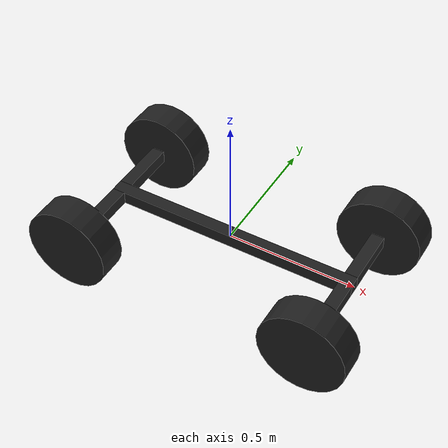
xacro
<?xml version="1.0" ?>
<robot name="rave_robot" xmlns:xacro="http://ros.org/wiki/xacro">
  <xacro:property name="robot_namespace" value="/rave"/>

  <xacro:property name="M_PI" value="3.1415926535897931" />
  <xacro:include filename="$(find rave_description)/urdf/common_properties.urdf"/>
  <xacro:include filename="$(find rave_description)/urdf/inertials.xacro"/>
  <xacro:include filename="$(find rave_description)/urdf/wheel.urdf.xacro"/>

  <!-- main axis dimensions -->
  <xacro:property name="bar_x" value="1.0" />
  <xacro:property name="bar_y" value="0.05" />
  <xacro:property name="bar_z" value="0.05" />
  <xacro:property name="bar_mass" value="1" />

  <!-- Wheel Properties -->
  <xacro:property name="wheel_length" value="0.1143" />
  <xacro:property name="wheel_radius" value="0.1651" />

  <gazebo>
      <!--ROS Control Plugin -->
      <plugin name="gazebo_ros_controller_manager" filename="libgazebo_ros_control.so">
          <legacyModeNS>true</legacyModeNS>
          <robotSimType>steer_bot_hardware_gazebo/SteerBotHardwareGazebo</robotSimType>
      </plugin>
  </gazebo>

  <!-- Base link -->
    <link name="base_link">
        <visual>
            <origin xyz="0 0 0" rpy="0 0 0"/>
            <geometry>
                <box size="${bar_x} ${bar_y} ${bar_z}" />
            </geometry>
            <material name="light_black" />
        </visual>
        <collision>
            <origin xyz="0 0 0" rpy="0 0 0"/>
            <geometry>
                <box size="${bar_x} ${bar_y} ${bar_z}" />
            </geometry>
        </collision>
        <xacro:solid_cuboid_inertial
        rpy="0 0 0" xyz="0 0 0"
        mass="${bar_x}"
        x="${bar_x}" y="${bar_y}" z="${bar_z}" />

        <visual>
            <origin xyz="${bar_x/2 - bar_y/2} 0 0" rpy="0 0 ${M_PI/2}"/>
            <geometry>
                <box size="${bar_x/2} ${bar_y} ${bar_z}" />
            </geometry>
            <material name="light_black" />
        </visual>
        <collision>
            <origin xyz="${bar_x/2 - bar_y/2} 0 0" rpy="0 0 ${M_PI/2}"/>
            <geometry>
                <box size="${bar_x/2} ${bar_y} ${bar_z}" />
            </geometry>
        </collision>
        <xacro:solid_cuboid_inertial
        rpy="0 0 0" xyz="${bar_x/2 - bar_y/2} 0 ${M_PI/2}"
        mass="${bar_x}"
        x="${bar_x/2}" y="${bar_y}" z="${bar_z}" />

        <visual>
            <origin xyz="-${bar_x/2 - bar_y/2} 0 0" rpy="0 0 ${M_PI/2}"/>
            <geometry>
                <box size="${bar_x/2} ${bar_y} ${bar_z}" />
            </geometry>
            <material name="light_black" />
        </visual>
        <collision>
            <origin xyz="-${bar_x/2 - bar_y/2} 0 0" rpy="0 0 ${M_PI/2}"/>
            <geometry>
                <box size="${bar_x/2} ${bar_y} ${bar_z}" />
            </geometry>
        </collision>
        <xacro:solid_cuboid_inertial
        rpy="0 0 0" xyz="-${bar_x/2 - bar_y/2} 0 ${M_PI/2}"
        mass="${bar_x}"
        x="${bar_x/2}" y="${bar_y}" z="${bar_z}" />
    </link>

    <!-- Base footprint is on the ground under the robot -->
    <link name="base_footprint"/>

    <joint name="base_footprint_joint" type="fixed">
      <parent link="base_link" />
      <child link="base_footprint" />
      <origin xyz="0 0 -${wheel_radius}" rpy="0 0 0" />
    </joint>

  <!-- Rave wheel macros -->
  <xacro:front_wheel_lr wheel_prefix="front_right">
    <origin xyz="${bar_x/2 - bar_y/2 } -${bar_x/4 + wheel_length/2} 0.0" rpy="0 0 0" />
  </xacro:front_wheel_lr>

  <xacro:front_wheel_lr wheel_prefix="front_left">
    <origin xyz="${bar_x/2 - bar_y/2 } ${bar_x/4 + wheel_length/2} 0.0" rpy="${M_PI} 0 0" />
  </xacro:front_wheel_lr>

  <xacro:rear_wheel_lr wheel_prefix="rear_right">
    <origin xyz="-${bar_x/2 - bar_y/2 } -${bar_x/4 + wheel_length/2} 0.0" rpy="0 0 0" />
  </xacro:rear_wheel_lr>

  <xacro:rear_wheel_lr wheel_prefix="rear_left">
    <origin xyz="-${bar_x/2 - bar_y/2 } ${bar_x/4 + wheel_length/2} 0.0" rpy="${M_PI} 0 0" />
  </xacro:rear_wheel_lr>

</robot>

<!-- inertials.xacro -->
<robot name="inertials" xmlns:xacro="http://wiki.ros.org/xacro">

    <!-- Math constants -->
    <xacro:property name="math_pi"        value="3.141592653589793" />
    <xacro:property name="math_pi_over_2" value="1.5707963267948966" />
    <xacro:property name="math_pi_over_4" value="0.785398163397448" />

    <!-- Inertial for solid cuboid with dimensions x y z  -->
    <xacro:macro name="solid_cuboid_inertial" params="rpy xyz mass x y z">
        <inertial>
            <origin rpy="${rpy}" xyz="${xyz}"/>
            <mass value="${mass}" />
            <inertia
                ixx="${mass * (y * y + z * z) / 12.0}" ixy="0.0" ixz="0.0"
                iyy="${mass * (x * x + z * z) / 12.0}" iyz="0.0"
                izz="${mass * (x * x + y * y) / 12.0}" />
        </inertial>
    </xacro:macro>

    <!-- Inertial for solid cylinder with radius and length aligned to z-axis  -->
    <xacro:macro name="solid_cylinder_inertial" params="rpy xyz mass radius length">
        <inertial>
            <origin rpy="${rpy}" xyz="${xyz}"/>
            <mass value="${mass}" />
            <inertia
                ixx="${mass * (3.0 * radius * radius + length * length) / 12.0}" ixy="0.0" ixz="0.0"
                iyy="${mass * (3.0 * radius * radius + length * length) / 12.0}" iyz="0.0"
                izz="${mass * (radius * radius) / 2.0}" />
        </inertial>
    </xacro:macro>

    <!-- A null inertial - used in placeholder links to esure the model will work in Gazebo -->
    <xacro:macro name="null_inertial">
        <inertial>
            <mass value="0.001"/>
            <inertia ixx="0.001" ixy="0" ixz="0" iyy="0.001" iyz="0" izz="0.001"/>
        </inertial>
    </xacro:macro>
</robot>

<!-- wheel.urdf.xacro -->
<robot xmlns:xacro="http://ros.org/wiki/xacro" name="rave_wheel">

	<!-- Properties -->
	<xacro:property name="steer_effort" value="10.0"/>
	<xacro:property name="steer_velocity" value="5.0"/>
	<xacro:property name="steer_limit" value="${45.0 * M_PI/180}"/>
	<xacro:property name="deg_to_rad" value="0.01745329251994329577"/>

	<!-- Steering link dimensions -->
	<xacro:property name="steer_radius" value="0.05" />
	<xacro:property name="steer_thickness" value="0.02" />
	<xacro:property name="steer_mass" value="1" />

	<xacro:macro name="front_wheel_lr" params="wheel_prefix *joint_pose">

		<link name="${wheel_prefix}_steer_link">
			<visual>
				<origin xyz="0 0 0" rpy="0 0 1.0"/>
				<geometry>
					<cylinder radius="${steer_radius}" length="${steer_thickness}"/>
				</geometry>
				<material name="blue" />
			</visual>
			<collision>
				<origin xyz="0 0 0" rpy="0 0 0"/>
				<geometry>
					<cylinder radius="${steer_radius}" length="${steer_thickness}"/>
				</geometry>
			</collision>
			<xacro:solid_cylinder_inertial
			rpy="0 0 0" xyz="0 0 0"
			mass="${steer_mass}"
			radius="${steer_radius}" length="${steer_thickness}" />
		</link>

		<link name="${wheel_prefix}_wheel_link">
			<inertial>
				<mass value="2.637" />
				<origin xyz="0 0 0" />
				<inertia  ixx="0.02467" ixy="0" ixz="0" iyy="0.04411" iyz="0" izz="0.02467" />
			</inertial>
			<visual>
				<origin xyz="0 0 0" rpy="${M_PI/2} 0 0" />
				<geometry>
					<cylinder length="${wheel_length}" radius="${wheel_radius}" />
				</geometry>
				<material name="black" />
			</visual>
			<collision>
				<origin xyz="0 0 0" rpy="${M_PI/2} 0 0" />
				<geometry>
					<cylinder length="${wheel_length}" radius="${wheel_radius}" />
				</geometry>
			</collision>
		</link>

		<joint name="${wheel_prefix}_steer_joint" type="revolute">
			<parent link="base_link"/>
			<child link="${wheel_prefix}_steer_link"/>
			<xacro:insert_block name="joint_pose"/>
			<axis xyz="0 0 1" rpy="0 0 0" />
			<limit effort="${steer_effort}"
				lower="-${steer_limit}"
				upper="${steer_limit}"
				velocity="${steer_velocity}"/>
		</joint>

		<joint name="${wheel_prefix}_wheel_joint" type="continuous">
			<parent link="${wheel_prefix}_steer_link"/>
			<child link="${wheel_prefix}_wheel_link"/>
			<origin xyz="0 0 0" rpy="0 0 0"/>
			<axis xyz="0 1 0"/>
		</joint>

		<gazebo reference="${wheel_prefix}_steer_link">
			<material>Gazebo/Blue</material>
		</gazebo>

		<gazebo reference="${wheel_prefix}_wheel_link">
			<mu1 value="1.0"/>
			<mu2 value="1.0"/>
			<kp value="10000000.0" />
			<kd value="1.0" />
			<fdir1 value="1 0 0"/>
			<material>Gazebo/Red</material>
		</gazebo>

		<transmission name="${wheel_prefix}_steer_joint_trans">
			<type>transmission_interface/SimpleTransmission</type>
			<actuator name="${wheel_prefix}_steer_joint_motor">
				<mechanicalReduction>1</mechanicalReduction>
				<hardwareInterface>hardware_interface/PositionJointInterface</hardwareInterface>
			</actuator>
			<joint name="${wheel_prefix}_steer_joint">
				<hardwareInterface>hardware_interface/PositionJointInterface</hardwareInterface>
			</joint>
		</transmission>

		<transmission name="${wheel_prefix}_wheel_joint_trans">
			<type>transmission_interface/SimpleTransmission</type>
			<actuator name="${wheel_prefix}_wheel_joint_motor">
				<mechanicalReduction>1</mechanicalReduction>
				<hardwareInterface>hardware_interface/VelocityJointInterface</hardwareInterface>
			</actuator>
			<joint name="${wheel_prefix}_wheel_joint">
				<hardwareInterface>hardware_interface/VelocityJointInterface</hardwareInterface>
			</joint>
		</transmission>

	</xacro:macro>

	<xacro:macro name="rear_wheel_lr" params="wheel_prefix *joint_pose">

		<link name="${wheel_prefix}_wheel_link">
			<inertial>
				<mass value="2.637" />
				<origin xyz="0 0 0" />
				<inertia  ixx="0.02467" ixy="0" ixz="0" iyy="0.04411" iyz="0" izz="0.02467" />
			</inertial>
			<visual>
				<origin xyz="0 0 0" rpy="${M_PI/2} 0 0" />
				<geometry>
					<cylinder length="${wheel_length}" radius="${wheel_radius}" />
				</geometry>
				<material name="black" />
			</visual>
			<collision>
				<origin xyz="0 0 0" rpy="${M_PI/2} 0 0" />
				<geometry>
					<cylinder length="${wheel_length}" radius="${wheel_radius}" />
				</geometry>
			</collision>
		</link>

		<joint name="${wheel_prefix}_wheel_joint" type="continuous">
			<parent link="base_link"/>
			<child link="${wheel_prefix}_wheel_link"/>
			<xacro:insert_block name="joint_pose"/>
			<axis xyz="0 1 0"/>
		</joint>

		<gazebo reference="${wheel_prefix}_wheel_link">
			<mu1 value="1.0"/>
			<mu2 value="1.0"/>
			<kp value="10000000.0" />
			<kd value="1.0" />
			<fdir1 value="1 0 0"/>
			<material>Gazebo/Red</material>
		</gazebo>

		<transmission name="${wheel_prefix}_wheel_joint_trans">
			<type>transmission_interface/SimpleTransmission</type>
			<actuator name="${wheel_prefix}_wheel_joint_motor">
				<mechanicalReduction>1</mechanicalReduction>
				<hardwareInterface>hardware_interface/VelocityJointInterface</hardwareInterface>
			</actuator>
			<joint name="${wheel_prefix}_wheel_joint">
				<hardwareInterface>hardware_interface/VelocityJointInterface</hardwareInterface>
			</joint>
		</transmission>

	</xacro:macro>
</robot>
